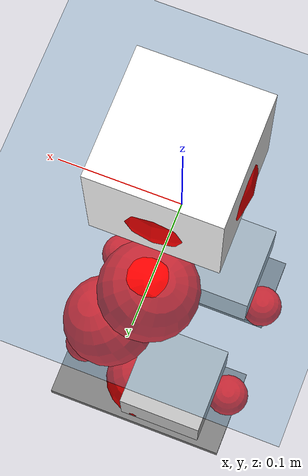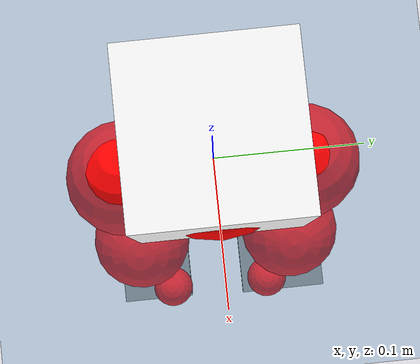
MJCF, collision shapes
<mujoco model="pi_12dof_release_v1">
  <compiler angle="radian" assetdir="assets" balanceinertia="true" inertiafromgeom="false"/>

  <option timestep="0.005" density="1.2" viscosity="2e-05"/>

  <size nkey="1"/>

  <visual>
    <quality shadowsize="8192"/>
    <map shadowclip="0.5"/>
  </visual>

  <default>
    <default class="/">
      <joint armature="0.01" damping="0.01" frictionloss="0.01"/>
      <geom contype="0" conaffinity="0" group="1" solref="-1000 -80"/>
      <site size="0.01 0.005 0.005" group="5"/>
      <general forcelimited="true" biastype="affine" gainprm="20" biasprm="0 -20 -0.5"/>
      <default class="foot">
        <geom size="0.0845 0.036 0.005" type="box" condim="6" group="4" priority="1" friction="0.9 0.2 0.2" solimp="0.015 1 0.005"/>
      </default>
      <default class="reward_collision_sphere">
        <geom group="5" rgba="1 0 0 1"/>
      </default>
    </default>
  </default>

  <asset>
    <texture type="skybox" colorspace="auto" name="//unnamed_texture_0" builtin="gradient" rgb1="0.95 0.95 0.95" rgb2="0.95 0.95 0.95" width="100" height="600"/>
    <texture type="2d" colorspace="auto" name="texplane" builtin="checker" rgb1="0.345 0.575 0.748" rgb2="0.345 0.575 0.748" markrgb="1 1 1" width="512" height="512"/>
    <material name="MatPlane" class="/" texture="texplane" texuniform="true" texrepeat="2 2" specular="0.9"/>
    <mesh name="baselink_1" class="/" file="baselink_1.STL"/>
    <mesh name="r_hip_pitch_link" class="/" file="r_hip_pitch_link.STL"/>
    <mesh name="r_hip_roll_link" class="/" file="r_hip_roll_link.STL"/>
    <mesh name="r_thigh_link" class="/" file="r_thigh_link.STL"/>
    <mesh name="r_calf_link" class="/" file="r_calf_link.STL"/>
    <mesh name="r_ankle_pitch_link" class="/" file="r_ankle_pitch_link.STL"/>
    <mesh name="r_ankle_roll_link" class="/" file="r_ankle_roll_link.STL"/>
    <mesh name="l_hip_pitch_link" class="/" file="l_hip_pitch_link.STL"/>
    <mesh name="l_hip_roll_link" class="/" file="l_hip_roll_link.STL"/>
    <mesh name="l_thigh_link" class="/" file="l_thigh_link.STL"/>
    <mesh name="l_calf_link" class="/" file="l_calf_link.STL"/>
    <mesh name="l_ankle_pitch_link" class="/" file="l_ankle_pitch_link.STL"/>
    <mesh name="l_ankle_roll_link" class="/" file="l_ankle_roll_link.STL"/>
  </asset>

  <worldbody>
    <geom name="floor" class="/" size="100 100 0.125" type="plane" group="0" material="MatPlane"/>
    <light name="toplight_shadow" class="/" pos="0 0 5" dir="0.0990148 0.0990148 -0.990148" type="directional" ambient="0.04 0.04 0.04" diffuse="0.55 0.55 0.55" specular="0.12 0.12 0.12"/>
    <light name="toplight_fill" class="/" pos="0 0 5" dir="0.0990148 0.0990148 -0.990148" type="directional" castshadow="false" ambient="0.04 0.04 0.04" diffuse="0.3 0.3 0.3" specular="0.08 0.08 0.08"/>
    <body name="trunk" pos="0.00205377 0.000513755 -0.0017085" quat="0.999999 0.000200891 0.000906324 0.000847858">
      <inertial pos="0.00029725 0.000782924 0.04579" quat="0.697856 0.0109134 0.0122699 0.71605" mass="2.1868" diaginertia="0.0169629 0.00292397 0.00724918"/>
      <joint name="//unnamed_joint_0" type="free"/>
      <geom name="//unnamed_geom_1" class="/" type="mesh" density="0" rgba="1 1 1 1" mesh="baselink_1"/>
      <geom name="//unnamed_geom_2" class="/" size="0.0503551 0.0503551 0.0503551" pos="0 0 0.0889706" type="box" rgba="1 1 1 1"/>
      <geom name="//unnamed_geom_3" class="reward_collision_sphere" size="0.0553906" pos="0 0 0.0778493"/>
      <site name="imu" class="/" pos="0.00347288 0.0107801 0.0130754" size="0.010071"/>
      <camera name="track" class="/" pos="0 -1.59165 0" quat="0.707107 0.707107 0 0" mode="trackcom"/>
      <camera name="ego_camera" class="/" pos="0.0835011 0 0.200184" quat="-0.5 -0.5 0.5 0.5"/>
      <body name="r_hip_pitch_link" pos="-0.00108701 -0.0176007 -0.035009" quat="0.992165 -0.000485417 -0.124931 0.000467667">
        <inertial pos="0.000475362 -0.047336 0.00051424" quat="-0.017626 0.703791 -0.0313507 0.709496" mass="0.366795" diaginertia="0.000188763 3.1816e-05 0.000141573"/>
        <joint name="r_hip_pitch_joint" class="/" pos="0 0 0" axis="0.0107541 -0.999912 0.00776571" range="-1.78766 1.22972" armature="0.00992038" damping="0.0265377" frictionloss="0.0114693"/>
        <geom name="//unnamed_geom_4" class="/" type="mesh" density="0" rgba="0.75294 0.75294 0.75294 1" mesh="r_hip_pitch_link"/>
        <geom name="//unnamed_geom_5" class="/" size="0.000503551 0.000503551 0.000503551" type="box" rgba="0.75294 0.75294 0.75294 1"/>
        <body name="r_hip_roll_link" pos="0.00239816 -0.04545 0.00218341" quat="0.999999 0.000393448 -0.000767644 -0.00113606">
          <inertial pos="0.00124352 -0.00260364 -0.0703646" quat="0.706123 -0.0789752 -0.0826953 0.698795" mass="0.384706" diaginertia="0.000564688 8.51112e-05 0.000215953"/>
          <joint name="r_hip_roll_joint" class="/" pos="0 0 0" axis="-0.99991 -0.0134236 -0.000276456" range="-0.115071 0.442316" armature="0.00950632" damping="0.000390336" frictionloss="0.0114721"/>
          <geom name="//unnamed_geom_6" class="/" type="mesh" density="0" rgba="0.75294 0.75294 0.75294 1" mesh="r_hip_roll_link"/>
          <geom name="//unnamed_geom_7" class="/" size="0.000503551 0.000503551 0.000503551" type="box" rgba="0.75294 0.75294 0.75294 1"/>
          <geom name="//unnamed_geom_8" class="reward_collision_sphere" size="0.0402841"/>
          <body name="r_thigh_link" pos="-0.00141562 -0.00234943 -0.0772105" quat="0.999999 0.00067882 -0.00062756 -0.000764384">
            <inertial pos="-0.00257521 4.50024e-05 -0.0501105" quat="0.737898 0.674893 0.00447994 -0.00245524" mass="0.114927" diaginertia="0.000212382 3.19291e-05 0.000101076"/>
            <joint name="r_thigh_joint" class="/" pos="0 0 0" axis="2.77172e-05 -0.000260561 -1" range="-0.357741 0.641685" armature="0.00901001" damping="0.00311436" frictionloss="0.00905465"/>
            <geom name="//unnamed_geom_9" class="/" type="mesh" density="0" rgba="0.75294 0.75294 0.75294 1" mesh="r_thigh_link"/>
            <geom name="//unnamed_geom_10" class="/" size="0.000503551 0.000503551 0.000503551" type="box" rgba="0.75294 0.75294 0.75294 1"/>
            <body name="r_calf_link" pos="-0.00118606 -0.00107296 -0.0808805" quat="0.947573 0.00126012 0.319536 0.000446549">
              <inertial pos="0.00136645 -0.00354864 -0.0783366" quat="0.999886 0.00785988 0.00433091 0.0121407" mass="0.823147" diaginertia="0.00565053 0.00108548 0.000279336"/>
              <joint name="r_calf_joint" class="/" pos="0 0 0" axis="-0.00353458 -0.99989 0.0143853" range="-1.60556 0.66669" armature="0.0105021" damping="0.00475978" frictionloss="0.0114768"/>
              <geom name="//unnamed_geom_11" class="/" type="mesh" density="0" rgba="0.75294 0.75294 0.75294 1" mesh="r_calf_link"/>
              <geom name="//unnamed_geom_12" class="/" size="0.000503551 0.000503551 0.000503551" type="box" rgba="0.75294 0.75294 0.75294 1"/>
              <geom name="//unnamed_geom_13" class="reward_collision_sphere" size="0.0402841"/>
              <body name="r_ankle_pitch_link" pos="0.00142758 -0.00240289 -0.155671" quat="0.980054 9.12047e-05 -0.198732 -4.18242e-06">
                <inertial pos="0.00751902 6.41636e-05 0.000712004" quat="-0.0106926 0.707559 -0.00128078 0.706572" mass="0.181147" diaginertia="0.000519647 6.8866e-05 0.000206183"/>
                <joint name="r_ankle_pitch_joint" class="/" pos="0 0 0" axis="-0.0089907 -0.999933 -0.00731792" range="-1.26635 0.505946" armature="0.00985239" damping="0" frictionloss="0.011214"/>
                <geom name="//unnamed_geom_14" class="/" type="mesh" density="0" rgba="0.75294 0.75294 0.75294 1" mesh="r_ankle_pitch_link"/>
                <geom name="//unnamed_geom_15" class="/" size="0.039277 0.0402841 0.0251776" type="box" rgba="0.75294 0.75294 0.75294 1"/>
                <body name="r_ankle_roll_link" pos="0.0844913 -0.00061437 -0.000818342" quat="1 -6.3094e-05 -7.26747e-06 -1.95196e-06">
                  <inertial pos="-0.0270717 -0.000569168 -0.015789" quat="0.559904 0.435715 0.441561 0.549257" mass="0.531204" diaginertia="0.00194193 0.000329791 0.000466592"/>
                  <joint name="r_ankle_roll_joint" class="/" pos="0 0 0" axis="-0.999928 -0.00952063 -0.00730284" stiffness="0.00633449" range="-0.200392 0.140276" armature="0.0114082" damping="0.0140279" frictionloss="0.00987866"/>
                  <geom name="//unnamed_geom_16" class="/" type="mesh" density="0" rgba="0.75294 0.75294 0.75294 1" mesh="r_ankle_roll_link"/>
                  <geom name="//unnamed_geom_17" class="/" type="mesh" rgba="0.75294 0.75294 0.75294 1" mesh="r_ankle_roll_link"/>
                  <geom name="right_foot" class="foot" size="0.0844296 0.0348031 0.00453878" pos="-0.0567807 0 -0.0489339"/>
                  <geom name="//unnamed_geom_19" class="reward_collision_sphere" size="0.0402841" pos="-0.0556674 0 -0.0222427"/>
                  <geom name="//unnamed_geom_20" class="reward_collision_sphere" size="0.020142" pos="0.0167002 0.0159165 -0.0444853"/>
                  <geom name="//unnamed_geom_21" class="reward_collision_sphere" size="0.020142" pos="-0.133602 0.0159165 -0.0444853"/>
                  <site name="right_foot" class="foot" pos="-0.0567807 0 -0.0489339" size="0.010071"/>
                </body>
              </body>
            </body>
          </body>
        </body>
      </body>
      <body name="l_hip_pitch_link" pos="0.0010504 0.0192082 -0.0387694" quat="0.992198 2.90429e-07 -0.124675 2.05369e-07">
        <inertial pos="0.00190534 0.0453013 -0.00297383" quat="-0.0424054 0.699331 0.0310468 0.712863" mass="0.406458" diaginertia="0.000215417 3.30722e-05 0.000175294"/>
        <joint name="l_hip_pitch_joint" class="/" pos="0 0 0" axis="-0.00841873 0.999929 0.00848812" range="-1.23306 1.7451" armature="0.00999754" damping="0.0199517" frictionloss="0.00991031"/>
        <geom name="//unnamed_geom_22" class="/" type="mesh" density="0" rgba="0.75294 0.75294 0.75294 1" mesh="l_hip_pitch_link"/>
        <geom name="//unnamed_geom_23" class="/" size="0.000503551 0.000503551 0.000503551" type="box" rgba="0.75294 0.75294 0.75294 1"/>
        <body name="l_hip_roll_link" pos="0.000729181 0.0420714 0.00301751" quat="1 -0.000222292 0.000141608 0.000418611">
          <inertial pos="-0.00200292 -2.17256e-05 -0.0688198" quat="0.698889 -0.0783056 -0.0797538 0.706443" mass="0.407727" diaginertia="0.000568968 8.73161e-05 0.00022531"/>
          <joint name="l_hip_roll_joint" class="/" pos="0 0 0" axis="-0.999987 -0.00302334 0.00419398" range="-0.478992 0.173731" armature="0.0095149" damping="0.00563094" frictionloss="0.00975118"/>
          <geom name="//unnamed_geom_24" class="/" type="mesh" density="0" rgba="0.75294 0.75294 0.75294 1" mesh="l_hip_roll_link"/>
          <geom name="//unnamed_geom_25" class="/" size="0.000503551 0.000503551 0.000503551" type="box" rgba="0.75294 0.75294 0.75294 1"/>
          <geom name="//unnamed_geom_26" class="reward_collision_sphere" size="0.0402841"/>
          <body name="l_thigh_link" pos="0.000773104 -0.000408673 -0.0790003" quat="1 0.000131932 -0.000193057 -0.000255815">
            <inertial pos="-0.000170284 0.000841262 -0.0527013" quat="0.671991 0.740502 -0.00920902 -0.000547804" mass="0.115666" diaginertia="0.000209284 3.03032e-05 9.64697e-05"/>
            <joint name="l_thigh_joint" class="/" pos="0 0 0" axis="0.000581748 0.00571262 -0.999984" stiffness="0.00642978" range="-0.600064 0.352768" armature="0.0109477" damping="0" frictionloss="0.0110957"/>
            <geom name="//unnamed_geom_27" class="/" type="mesh" density="0" rgba="0.75294 0.75294 0.75294 1" mesh="l_thigh_link"/>
            <geom name="//unnamed_geom_28" class="/" size="0.000503551 0.000503551 0.000503551" type="box" rgba="0.75294 0.75294 0.75294 1"/>
            <body name="l_calf_link" pos="0.000660259 -0.00169732 -0.0775462" quat="0.947992 -0.000506854 0.318292 0.000140213">
              <inertial pos="0.00273113 0.0050779 -0.0798351" quat="0.999964 -0.00548397 -0.0043771 -0.00482689" mass="0.830178" diaginertia="0.00595916 0.00110943 0.000298617"/>
              <joint name="l_calf_joint" class="/" pos="0 0 0" axis="-0.00430651 0.999958 -0.00811145" range="-0.628311 1.60649" armature="0.0101196" damping="0.0095925" frictionloss="0.00867913"/>
              <geom name="//unnamed_geom_29" class="/" type="mesh" density="0" rgba="0.75294 0.75294 0.75294 1" mesh="l_calf_link"/>
              <geom name="//unnamed_geom_30" class="/" size="0.000503551 0.000503551 0.000503551" type="box" rgba="0.75294 0.75294 0.75294 1"/>
              <geom name="//unnamed_geom_31" class="reward_collision_sphere" size="0.0402841"/>
              <body name="l_ankle_pitch_link" pos="5.66742e-05 0.00143013 -0.157686" quat="0.980074 -1.30184e-05 -0.198631 9.31179e-05">
                <inertial pos="0.0065702 -0.000669068 -0.000202831" quat="-0.0025414 0.708874 0.00256789 0.705326" mass="0.173213" diaginertia="0.000532079 7.29671e-05 0.000202996"/>
                <joint name="l_ankle_pitch_joint" class="/" pos="0 0 0" axis="-0.000175807 0.999998 0.0022268" range="-0.502994 1.28081" armature="0.00998357" damping="0.00517812" frictionloss="0.0108129"/>
                <geom name="//unnamed_geom_32" class="/" type="mesh" density="0" rgba="0.75294 0.75294 0.75294 1" mesh="l_ankle_pitch_link"/>
                <geom name="//unnamed_geom_33" class="/" size="0.039277 0.0402841 0.0251776" type="box" rgba="0.75294 0.75294 0.75294 1"/>
                <body name="l_ankle_roll_link" pos="0.0830519 0.0007205 0.00195979" quat="1 0.000336638 3.638e-05 0.000431526">
                  <inertial pos="-0.0298264 -0.000982862 -0.0164209" quat="0.553082 0.437437 0.431269 0.562811" mass="0.535525" diaginertia="0.00196583 0.000332332 0.000500777"/>
                  <joint name="l_ankle_roll_joint" class="/" pos="0 0 0" axis="-0.999934 -0.00513978 0.0103199" range="-0.145827 0.185806" armature="0.00982499" damping="0.0241889" frictionloss="0.00949724"/>
                  <geom name="//unnamed_geom_34" class="/" type="mesh" density="0" rgba="0.75294 0.75294 0.75294 1" mesh="l_ankle_roll_link"/>
                  <geom name="//unnamed_geom_35" class="/" type="mesh" rgba="0.75294 0.75294 0.75294 1" mesh="l_ankle_roll_link"/>
                  <geom name="left_foot" class="foot" size="0.087096 0.0420111 0.00446488" pos="-0.0567807 0 -0.0489339"/>
                  <geom name="//unnamed_geom_37" class="reward_collision_sphere" size="0.0402841" pos="-0.0556674 0 -0.0222427"/>
                  <geom name="//unnamed_geom_38" class="reward_collision_sphere" size="0.020142" pos="0.0167002 -0.0159165 -0.0444853"/>
                  <geom name="//unnamed_geom_39" class="reward_collision_sphere" size="0.020142" pos="-0.133602 -0.0159165 -0.0444853"/>
                  <site name="left_foot" class="foot" pos="-0.0567807 0 -0.0489339" size="0.010071"/>
                </body>
              </body>
            </body>
          </body>
        </body>
      </body>
    </body>
  </worldbody>

  <contact>
    <pair class="/" geom1="floor" geom2="right_foot" name="//unnamed_contact_1"/>
    <pair class="/" geom1="floor" geom2="left_foot" name="//unnamed_contact_0"/>
  </contact>

  <actuator>
    <general name="r_hip_pitch_joint" class="/" joint="r_hip_pitch_joint" forcerange="-20.762 20.762" gainprm="20.2514" biasprm="0 -20.2514 -0.52756"/>
    <general name="r_hip_roll_joint" class="/" joint="r_hip_roll_joint" forcerange="-23.0984 23.0984" gainprm="20.2514" biasprm="0 -20.2514 -0.52756"/>
    <general name="r_thigh_joint" class="/" joint="r_thigh_joint" forcerange="-21.9893 21.9893" gainprm="20.2514" biasprm="0 -20.2514 -0.52756"/>
    <general name="r_calf_joint" class="/" joint="r_calf_joint" forcerange="-22.8648 22.8648" gainprm="20.2514" biasprm="0 -20.2514 -0.52756"/>
    <general name="r_ankle_pitch_joint" class="/" joint="r_ankle_pitch_joint" forcerange="-20.4277 20.4277" gainprm="20.2514" biasprm="0 -20.2514 -0.52756"/>
    <general name="r_ankle_roll_joint" class="/" joint="r_ankle_roll_joint" forcerange="-19.078 19.078" gainprm="20.2514" biasprm="0 -20.2514 -0.52756"/>
    <general name="l_hip_pitch_joint" class="/" joint="l_hip_pitch_joint" forcerange="-20.9113 20.9113" gainprm="20.2514" biasprm="0 -20.2514 -0.52756"/>
    <general name="l_hip_roll_joint" class="/" joint="l_hip_roll_joint" forcerange="-19.5354 19.5354" gainprm="20.2514" biasprm="0 -20.2514 -0.52756"/>
    <general name="l_thigh_joint" class="/" joint="l_thigh_joint" forcerange="-21.9689 21.9689" gainprm="20.2514" biasprm="0 -20.2514 -0.52756"/>
    <general name="l_calf_joint" class="/" joint="l_calf_joint" forcerange="-20.9885 20.9885" gainprm="20.2514" biasprm="0 -20.2514 -0.52756"/>
    <general name="l_ankle_pitch_joint" class="/" joint="l_ankle_pitch_joint" forcerange="-22.7249 22.7249" gainprm="20.2514" biasprm="0 -20.2514 -0.52756"/>
    <general name="l_ankle_roll_joint" class="/" joint="l_ankle_roll_joint" forcerange="-20.7112 20.7112" gainprm="20.2514" biasprm="0 -20.2514 -0.52756"/>
  </actuator>

  <sensor>
    <gyro site="imu" name="imu_angular_velocity"/>
    <velocimeter site="imu" name="imu_linear_velocity"/>
    <framelinvel objtype="site" objname="left_foot" name="left_foot_global_linear_velocity"/>
    <framelinvel objtype="site" objname="right_foot" name="right_foot_global_linear_velocity"/>
  </sensor>

  <keyframe>
    <key name="home" qpos="0 0 0.291 1 0 0 0 0.4 0 0 -0.8 0.4 0 -0.4 0 0 0.8 -0.4 0"/>
  </keyframe>
</mujoco>
